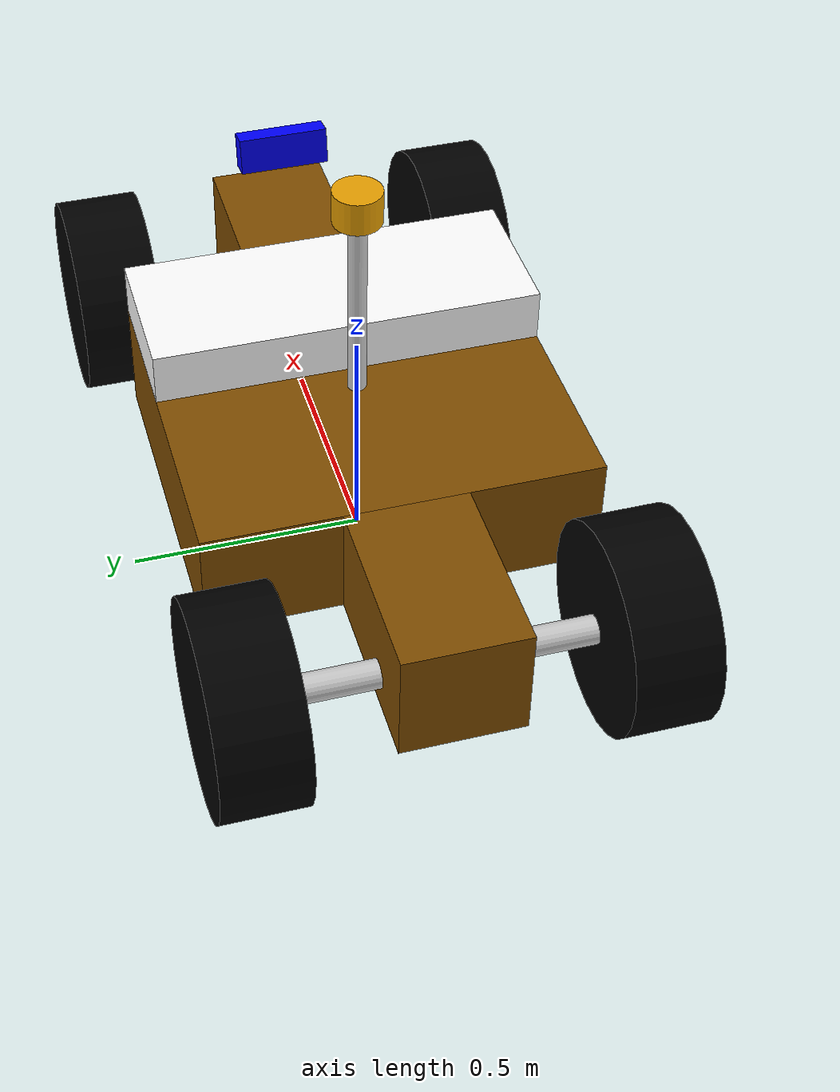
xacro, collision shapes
<?xml version="1.0"?>
<robot name="carlike_robot" xmlns:xacro="http://wiki.ros.org/xacro">
    <!-- 机器人底盘 -->
    <xacro:include filename="$(find carlike_robot_description)/xacro/car_base.xacro" />

    <!-- rgbd相机传感器 -->
    <xacro:include filename="$(find carlike_robot_description)/xacro/sensors/camera.xacro" />

    <!-- 单线和多线雷达选择 -->
    <xacro:include filename="$(find carlike_robot_description)/xacro/sensors/VLP-16.xacro" />

    <gazebo reference="base_footprint">
      <visual>
        <plugin filename="libdraw_traj.so" name="drawtrajPlugin">
          <topicName>/odom</topicName>
        </plugin>
      </visual>
    </gazebo>
</robot>

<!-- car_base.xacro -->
<!-- 根标签，必须声明 xmlns:xacro -->
<robot name="car_base" xmlns:xacro="http://www.ros.org/wiki/xacro">
    <!-- 封装变量、常量 -->
    <xacro:property name="PI" value="3.1415926"/>
    <!-- 宏:黑色设置 -->
    <material name="black">
      <color rgba="0.0 0.0 0.0 1.0" />
    </material>
    <!-- 底盘属性 -->
    <xacro:property name="base_footprint_radius" value="0.001" /> <!-- base_footprint 半径  -->
    <xacro:property name="earth_space" value="0.145" /> <!-- 离地间距 -->
    <xacro:property name="base_link_height" value="0.25" /> <!-- 底盘高度 -->
    <xacro:property name="base_link_m" value="50" />
    <xacro:property name="base_link_back_m" value="20" />
    <xacro:property name="base_link_front_m" value="20" />

    <!-- Macro for inertia matrix -->
    <xacro:macro name="sphere_inertial_matrix" params="m r">
        <inertial>
            <mass value="${m}" />
            <inertia ixx="${2*m*r*r/5}" ixy="0" ixz="0"
                iyy="${2*m*r*r/5}" iyz="0"
                izz="${2*m*r*r/5}" />
        </inertial>
    </xacro:macro>

    <xacro:macro name="cylinder_inertial_matrix" params="m r h">
        <inertial>
            <mass value="${m}" />
            <inertia ixx="${m*(3*r*r+h*h)/12}" ixy ="0" ixz ="0"
                iyy="${m*r*r/2}" iyz ="0"
                izz="${m*(3*r*r+h*h)/12}" />
        </inertial>
    </xacro:macro>

    <xacro:macro name="Box_inertial_matrix" params="m l w h">
       <inertial>
               <mass value="${m}" />
               <inertia ixx="${m*(h*h + l*l)/12}" ixy ="0" ixz ="0"
                   iyy="${m*(w*w + h*h)/12}" iyz="0"
                   izz="${m*(w*w + l*l)/12}" />
       </inertial>
   </xacro:macro>

    <!-- 底盘 -->
    <link name="base_footprint">
      <visual>
        <geometry>
          <sphere radius="${base_footprint_radius}" />
        </geometry>
      </visual>
    </link>

    <link name="base_link">
      <visual>
        <geometry>
          <box size="0.75 0.835 0.25" />
        </geometry>
        <origin xyz="0 0 0" rpy="0 0 0" />
        <material name="yellow">
          <color rgba="0.5 0.3 0.0 1.0" />
        </material>
      </visual>
      <collision>
        <geometry>
          <box size="0.75 0.835 0.25" />
        </geometry>
        <origin xyz="0 0 0" rpy="0 0 0" />
      </collision>
      <xacro:Box_inertial_matrix m="${base_link_m}" l="0.75" w="0.835" h="0.25"/>
    </link>

    <link name="base_link_back">
      <visual>
        <geometry>
          <box size="0.4 0.26 0.25" />
        </geometry>
        <origin xyz="0 0 0" rpy="0 0 0" />
        <material name="yellow">
          <color rgba="0.5 0.3 0.0 1.0" />
        </material>
      </visual>
      <collision>
        <geometry>
          <box size="0.4 0.26 0.25" />
        </geometry>
        <origin xyz="0 0 0" rpy="0 0 0" />
      </collision>
      <xacro:Box_inertial_matrix m="${base_link_back_m}" l="0.4" w="0.26" h="0.25"/>
    </link>

    <link name="base_link_front">
      <visual>
        <geometry>
          <box size="0.45 0.26 0.25" />
        </geometry>
        <origin xyz="0 0 0" rpy="0 0 0" />
        <material name="yellow">
          <color rgba="0.5 0.3 0.0 1.0" />
        </material>
      </visual>
      <collision>
        <geometry>
          <box size="0.45 0.26 0.25" />
        </geometry>
        <origin xyz="0 0 0" rpy="0 0 0" />
      </collision>
      <xacro:Box_inertial_matrix m="${base_link_front_m}" l="0.45" w="0.26" h="0.25"/>
    </link>

    <joint name="base_link2base_footprint" type="fixed">
      <parent link="base_footprint" />
      <child link="base_link" />
      <origin xyz="0 0 ${earth_space + base_link_height / 2 }" />
    </joint>

    <joint name="base_link2base_link_back" type="fixed">
      <parent link="base_link" />
      <child link="base_link_back" />
      <origin xyz="-0.575 0 0" />
    </joint>

    <joint name="base_link2base_link_front" type="fixed">
      <parent link="base_link" />
      <child link="base_link_front" />
      <origin xyz="0.6 0 0" />
    </joint>

    <gazebo reference="base_link">
      <material>Gazebo/Yellow</material>
    </gazebo>
    <gazebo reference="base_link_back">
      <material>Gazebo/Yellow</material>
    </gazebo>
    <gazebo reference="base_link_front">
      <material>Gazebo/Yellow</material>
    </gazebo>

    <!-- 驱动轮（后轮） -->
    <!-- 轮子属性 -->
    <xacro:property name="wheel_radius" value="0.22" /><!-- 半径 -->
    <xacro:property name="wheel_length" value="0.18" /><!-- 宽度 -->
    <xacro:property name="wheel_m" value="1" /> <!-- 质量  -->
    <!-- 驱动轮宏实现 -->
    <link name="backshaft">
      <visual>
        <geometry>
          <cylinder radius="0.03" length="0.8" />
        </geometry>
        <origin xyz="0 0 0" rpy="${PI/2} 0 0" />
        <material name="grey">
          <color rgba="0.8 0.8 0.8 1" />
        </material>
      </visual>
      <collision>
        <geometry>
        <cylinder radius="0.03" length="0.8" />
        </geometry>
        <origin xyz="0 0 0" rpy="${PI/2} 0 0" />
      </collision>
      <xacro:cylinder_inertial_matrix m="0.001" r="0.03" h="0.8" />
    </link>

    <gazebo reference="backshaft">
      <material>Gazebo/Grey</material>
        <mu1>100</mu1>
        <mu2>100</mu2>
    </gazebo>

    <xacro:macro name="add_backwheels" params="name flag">
      <link name="${name}_backwheel">
        <visual>
          <geometry>
            <cylinder radius="${wheel_radius}" length="${wheel_length}" />
          </geometry>
          <origin xyz="0.0 0.0 0.0" rpy="${PI / 2} 0.0 0.0" />
          <material name="black" />
        </visual>
        <collision>
          <geometry>
            <cylinder radius="${wheel_radius}" length="${wheel_length}" />
          </geometry>
          <origin xyz="0.0 0.0 0.0" rpy="${PI / 2} 0.0 0.0" />
        </collision>
        <xacro:cylinder_inertial_matrix m="${wheel_m}" r="${wheel_radius}" h="${wheel_length}" />
      </link>

      <joint name="${name}_backwheel2base_link" type="continuous">
        <parent link="backshaft" />
        <child link="${name}_backwheel" />
        <origin xyz="0 ${flag * 0.4} 0.0" />
        <axis xyz="0 1 0" />
      </joint>

      <gazebo reference="${name}_backwheel">
        <material>Gazebo/Black</material>
        <mu1>10000</mu1>
        <mu2>10000</mu2>
      </gazebo>

    </xacro:macro>

    <joint name="backshaft2base_link" type="fixed">
        <parent link="base_link" />
        <child link="backshaft" />
        <origin xyz="-0.635 0.0 ${-(earth_space + base_link_height / 2 - wheel_radius) }" />
        <axis xyz="0 0 0" />
    </joint>

    <xacro:add_backwheels name="left" flag="1" />
    <xacro:add_backwheels name="right" flag="-1" />

    <!-- 转向轮（前轮） -->
    <xacro:property name="degrees_28" value="0.49"/>
    <xacro:property name="servo_stall_torque" value="1000000.0"/>
    <xacro:property name="servo_no_load_speed" value="10000.0"/>
    <!-- 转向轮实现 -->
    <link name="frontshaft">
      <visual>
        <geometry>
          <cylinder radius="0.03" length="0.8" />
        </geometry>
        <origin xyz="0 0 0" rpy="${PI/2} 0 0" />
        <material name="grey">
          <color rgba="0.8 0.8 0.8 1" />
        </material>
      </visual>
      <collision>
        <geometry>
        <cylinder radius="0.03" length="0.8" />
        </geometry>
        <origin xyz="0 0 0" rpy="${PI/2} 0 0" />
      </collision>
      <xacro:cylinder_inertial_matrix m="0.001" r="0.03" h="0.8" />
    </link>

    <gazebo reference="frontshaft">
      <material>Gazebo/Grey</material>
      <mu1>100</mu1>
      <mu2>100</mu2>
    </gazebo>

  	<link name="left_bridge">
      <visual>
        <geometry>
          <cylinder radius="0.04" length="0.1" />
        </geometry>
        <origin xyz="0 0 0" rpy="${PI/2} 0 0" />
        <material name="red">
          <color rgba="1.0 0.0 0.0 1" />
        </material>
      </visual>
      <collision>
        <geometry>
        <cylinder radius="0.04" length="0.1" />
        </geometry>
        <origin xyz="0 0 0" rpy="${PI/2} 0 0" />
      </collision>
      <xacro:cylinder_inertial_matrix m="0.001" r="0.04" h="0.1" />
    </link>

    <gazebo reference="left_bridge">
      <material>Gazebo/Grey</material>
      <mu1>100</mu1>
      <mu2>100</mu2>
    </gazebo>

  	<link name="right_bridge">
      <visual>
        <geometry>
          <cylinder radius="0.04" length="0.1" />
        </geometry>
        <origin xyz="0 0 0" rpy="${PI/2} 0 0" />
        <material name="red">
          <color rgba="1.0 0.0 0.0 1" />
        </material>
      </visual>
      <collision>
        <geometry>
        <cylinder radius="0.04" length="0.1" />
        </geometry>
        <origin xyz="0 0 0" rpy="${PI/2} 0 0" />
      </collision>
      <xacro:cylinder_inertial_matrix m="0.001" r="0.04" h="0.1" />
    </link>

    <gazebo reference="right_bridge">
      <material>Gazebo/Grey</material>
      <mu1>100</mu1>
      <mu2>100</mu2>
    </gazebo>

    <xacro:macro name="add_frontwheels" params="name flag">
      <link name="${name}_frontwheel">
        <visual>
          <geometry>
            <cylinder radius="${wheel_radius}" length="${wheel_length}" />
          </geometry>
          <origin xyz="0.0 0.0 0.0" rpy="${PI / 2} 0.0 0.0" />
          <material name="black" />
        </visual>
        <collision>
          <geometry>
            <cylinder radius="${wheel_radius}" length="${wheel_length}" />
          </geometry>
          <origin xyz="0.0 0.0 0.0" rpy="${PI / 2} 0.0 0.0" />
        </collision>
        <xacro:cylinder_inertial_matrix m="${wheel_m}" r="${wheel_radius}" h="${wheel_length}" />
      </link>

      <gazebo reference="${name}_frontwheel">
        <material>Gazebo/Black</material>
        <mu1>0.1</mu1>
        <mu2>0.1</mu2>
      </gazebo>

      <joint name="${name}_bridge2base_link" type="revolute">
        <parent link="frontshaft" />
        <child link="${name}_bridge" />
        <origin xyz="0 ${flag * 0.4175} 0.0" />
        <axis xyz="0 0 1" />
        <limit lower="${-degrees_28}" upper="${degrees_28}"
             effort="${servo_stall_torque}" velocity="${servo_no_load_speed}"/>
      </joint>

      <joint name="${name}_frontwheel2${name}_bridge" type="continuous">
        <parent link="${name}_bridge" />
        <child link="${name}_frontwheel" />
        <origin xyz="0.0 0.0 0.0" />
        <axis xyz="0 1 0" />
      </joint>
    </xacro:macro>

    <joint name="frontshaft2base_link" type="fixed">
        <parent link="base_link" />
        <child link="frontshaft" />
        <origin xyz="0.685 0.0 ${-(earth_space + base_link_height / 2 - wheel_radius) }" />
        <axis xyz="0 0 0" />
    </joint>

    <xacro:add_frontwheels name="left" flag="1" />
    <xacro:add_frontwheels name="right" flag="-1" />

    <!-- IMU支撑架实现 -->
    <xacro:property name="frame0_m" value="0.01" />
    <link name="frame0">
      <visual>
        <geometry>
          <box size="0.32 0.835 0.115" />
        </geometry>
        <origin xyz="0 0 0" rpy="0 0 0" />
        <material name="white">
          <color rgba="1.0 1.0 1.0 1.0" />
        </material>
      </visual>
      <collision>
        <geometry>
          <box size="0.32 0.835 0.115" />
        </geometry>
        <origin xyz="0 0 0" rpy="0 0 0" />
      </collision>
      <xacro:Box_inertial_matrix m="${frame0_m}" l="0.32" w="0.835" h="0.115"/>
    </link>

    <joint name="frame02base_link" type="fixed">
      <parent link="base_link" />
      <child link="frame0" />
      <origin xyz="0.215 0 0.1825" />
    </joint>

    <gazebo reference="frame0">
      <material>Gazebo/White</material>
    </gazebo>

    <!-- 激光雷达支架 -->
    <link name="frame1">
      <visual>
        <geometry>
          <cylinder radius="0.02" length="0.445" />
        </geometry>
        <origin xyz="0 0 0" rpy="0 0 0" />
        <material name="grey">
          <color rgba="0.8 0.8 0.8 1" />
        </material>
      </visual>
      <collision>
        <geometry>
          <cylinder radius="0.02" length="0.445" />
        </geometry>
        <origin xyz="0 0 0" rpy="0 0 0" />
      </collision>
      <xacro:cylinder_inertial_matrix m="0.01" r="0.02" h="0.445" />
    </link>

    <joint name="frame12base_link" type="fixed">
      <parent link="base_link" />
      <child link="frame1" />
      <origin xyz="0.0 0.0 0.3475" />
    </joint>

    <gazebo reference="frame1">
      <material>Gazebo/Yellow</material>
    </gazebo>

    <!-- 摄像头 -->
    <link name="camera">
      <visual>
        <geometry>
          <box size="0.05 0.2 0.08" />
        </geometry>
        <origin xyz="0 0 0" rpy="0 0 0" />
        <material name="blue">
          <color rgba="0.0 0.0 1.0 1.0" />
        </material>
      </visual>
      <collision>
        <geometry>
          <box size="0.05 0.2 0.08" />
        </geometry>
        <origin xyz="0 0 0" rpy="0 0 0" />
      </collision>
      <xacro:Box_inertial_matrix m="0.2" l="0.05" w="0.2" h="0.08"/>
    </link>

    <gazebo reference="camera">
      <material>Gazebo/Blue</material>
    </gazebo>

    <joint name="camera_joint" type="fixed">
      <origin xyz="0.435 0 0.1175" rpy="0 0.18 0" />
      <parent link="frame0"/>
      <child link="camera"/>
    </joint>

  <!-- ros2_control 配置：为需要控制的 joint 指定接口 -->
  <ros2_control name="carlike_robot_control" type="system">
    <hardware>
      <plugin>gazebo_ros2_control/GazeboSystem</plugin>
    </hardware>

    <!-- 驱动轮（速度控制） -->
    <joint name="left_backwheel2base_link">
      <command_interface name="velocity">
        <param name="min">-10</param>
        <param name="max">10</param>
      </command_interface>
      <state_interface name="position" />
      <state_interface name="velocity" />
    </joint>

    <joint name="right_backwheel2base_link">
      <command_interface name="velocity">
        <param name="min">-10</param>
        <param name="max">10</param>
      </command_interface>
      <state_interface name="position" />
      <state_interface name="velocity" />
    </joint>

    <!-- 前轮转向（位置控制） -->
    <joint name="left_bridge2base_link">
      <command_interface name="position" />
      <state_interface name="position" />
    </joint>

    <joint name="right_bridge2base_link">
      <command_interface name="position" />
      <state_interface name="position" />
    </joint>
  </ros2_control>

  <gazebo>
    <plugin name="gazebo_ros2_control" filename="libgazebo_ros2_control.so">
      <parameters>$(find carlike_robot_description)/config/controllers.yaml</parameters>
        <ros>
          <remapping>/ackermann_steering_controller/controller_state:=/controller_state</remapping>
          <remapping>/ackermann_steering_controller/odometry:=/odom</remapping>
          <remapping>/ackermann_steering_controller/reference_unstamped:=/cmd_vel</remapping>
          <remapping>/ackermann_steering_controller/tf_odometry:=/tf</remapping>
          <remapping>/ackermann_steering_controller/transition_event:=/transition_event</remapping>
        </ros>
    </plugin>
  </gazebo>
</robot>

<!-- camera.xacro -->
<robot xmlns:xacro="http://www.ros.org/wiki/xacro" name="rgbd_camera">

  <!-- 被引用的link -->
    <gazebo reference="camera">
      <sensor type="depth" name="camera_sensor">
          <plugin name="depth_camera" filename="libgazebo_ros_camera.so">
              <frame_name>camera_link_optical</frame_name>
          </plugin>
          <always_on>true</always_on>
          <update_rate>10</update_rate>
          <camera name="camera">
              <horizontal_fov>1.5009831567</horizontal_fov>
              <image>
                  <width>800</width>
                  <height>600</height>
                  <format>R8G8B8</format>
              </image>

              <distortion>
                  <k1>0.0</k1>
                  <k2>0.0</k2>
                  <k3>0.0</k3>
                  <p1>0.0</p1>
                  <p2>0.0</p2>
                  <center>0.5 0.5</center>
              </distortion>
          </camera>
      </sensor>
    </gazebo>

  <!-- generate an optical frame http://www.ros.org/reps/rep-0103.html#suffix-frames
      so that ros and opencv can operate on the camera frame correctly -->
  <joint name="camera_optical_joint" type="fixed">
    <!-- these values have to be these values otherwise the gazebo camera image
        won't be aligned properly with the frame it is supposedly originating from -->
    <origin xyz="0 0 0" rpy="-1.5708 0 -1.5708"/>
    <parent link="camera"/>
    <child link="camera_link_optical"/>
  </joint>

  <link name="camera_link_optical">
  </link>

</robot>

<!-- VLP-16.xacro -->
<robot name="VLP-16" xmlns:xacro="http://www.ros.org/wiki/xacro">

  <xacro:arg name="gpu" default="false"/>
  <xacro:property name="gpu" value="$(arg gpu)" />
  <xacro:arg name="organize_cloud" default="false"/>
  <xacro:property name="organize_cloud" value="$(arg organize_cloud)" />

  <xacro:include filename="$(find velodyne_description)/urdf/VLP-16.urdf.xacro"/>
  <xacro:VLP-16 parent="frame1" name="velodyne" topic="/velodyne_points" organize_cloud="${organize_cloud}" hz="10" samples="440" gpu="${gpu}">
    <origin xyz="0 0 0.2" rpy="0 0 0" />
  </xacro:VLP-16>

</robot>

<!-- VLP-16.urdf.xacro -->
<robot xmlns:xacro="http://www.ros.org/wiki/xacro" name="VLP-16">
  <xacro:property name="M_PI" value="3.1415926535897931" />
  <xacro:macro name="VLP-16" params="*origin is_sim:=true parent:=base_link name:=velodyne tf_prefix:='' topic:=/velodyne_points organize_cloud:=false hz:=10 lasers:=16 samples:=1875 collision_range:=0.3 min_range:=0.0 max_range:=100.0 noise:=0.008 min_angle:=-${M_PI} max_angle:=${M_PI} gpu:=false">

    <joint name="${name}_base_mount_joint" type="fixed">
      <xacro:insert_block name="origin" />
      <parent link="${parent}"/>
      <child link="${name}_base_link"/>
    </joint>

    <link name="${name}_base_link">
      <inertial>
        <mass value="0.83"/>
        <origin xyz="0 0 0.03585"/>
        <inertia ixx="${(0.83 * (3.0*0.0516*0.0516 + 0.0717*0.0717)) / 12.0}" ixy="0" ixz="0"
          iyy="${(0.83 * (3.0*0.0516*0.0516 + 0.0717*0.0717)) / 12.0}" iyz="0"
          izz="${0.5 * 0.83 * (0.0516*0.0516)}"/>
      </inertial>
      <visual>
        <geometry>
          <mesh filename="package://velodyne_description/meshes/VLP16_base_1.dae" />
        </geometry>
      </visual>
      <visual>
        <geometry>
          <mesh filename="package://velodyne_description/meshes/VLP16_base_2.dae" />
        </geometry>
      </visual>
      <collision>
        <origin rpy="0 0 0" xyz="0 0 0.03585"/>
        <geometry>
          <cylinder radius="0.0516" length="0.0717"/>
        </geometry>
      </collision>
    </link>

    <joint name="${name}_base_scan_joint" type="fixed" >
      <origin xyz="0 0 0.0377" rpy="0 0 0" />
      <parent link="${name}_base_link" />
      <child link="${name}"/>
    </joint>

    <link name="${name}">
      <inertial>
        <mass value="0.01"/>
        <origin xyz="0 0 0"/>
        <inertia ixx="1e-7" ixy="0" ixz="0" iyy="1e-7" iyz="0" izz="1e-7"/>
      </inertial>
      <visual>
        <origin xyz="0 0 -0.0377" />
        <geometry>
          <mesh filename="package://velodyne_description/meshes/VLP16_scan.dae" />
        </geometry>
      </visual>
      <collision>
        <geometry>
          <sphere radius="0"/>
        </geometry>
      </collision>
    </link>

    <!-- Gazebo requires the velodyne_gazebo_plugins package -->
    <xacro:if value="${is_sim}">
        <gazebo reference="${name}">
            <xacro:if value="${gpu}">
                <sensor type="gpu_ray" name="${name}-VLP16">
                <pose>0 0 0 0 0 0</pose>
                <visualize>false</visualize>
                <update_rate>${hz}</update_rate>
                <ray>
                    <scan>
                    <horizontal>
                        <samples>${samples}</samples>
                        <resolution>1</resolution>
                        <min_angle>${min_angle}</min_angle>
                        <max_angle>${max_angle}</max_angle>
                    </horizontal>
                    <vertical>
                        <samples>${lasers}</samples>
                        <resolution>1</resolution>
                        <min_angle>-${15.0*M_PI/180.0}</min_angle>
                        <max_angle> ${15.0*M_PI/180.0}</max_angle>
                    </vertical>
                    </scan>
                    <range>
                    <min>${collision_range}</min>
                    <max>${max_range+1}</max>
                    <resolution>0.001</resolution>
                    </range>
                    <noise>
                    <type>gaussian</type>
                    <mean>0.0</mean>
                    <stddev>0.0</stddev>
                    </noise>
                </ray>
                <plugin name="gazebo_ros_laser_controller" filename="libgazebo_ros_velodyne_laser.so">
                    <ros>
                    <namespace>/${name}</namespace>
                    <remapping>~/out:=${topic}</remapping>
                    </ros>
                    <tf_prefix>${tf_prefix}</tf_prefix>
                    <frame_name>${name}</frame_name>
                    <organize_cloud>${organize_cloud}</organize_cloud>
                    <min_range>${min_range}</min_range>
                    <max_range>${max_range}</max_range>
                    <gaussian_noise>${noise}</gaussian_noise>
                </plugin>
                </sensor>
            </xacro:if>
            <xacro:unless value="${gpu}">
                <sensor type="ray" name="${name}-VLP16">
                <pose>0 0 0 0 0 0</pose>
                <visualize>false</visualize>
                <update_rate>${hz}</update_rate>
                <ray>
                    <scan>
                    <horizontal>
                        <samples>${samples}</samples>
                        <resolution>1</resolution>
                        <min_angle>${min_angle}</min_angle>
                        <max_angle>${max_angle}</max_angle>
                    </horizontal>
                    <vertical>
                        <samples>${lasers}</samples>
                        <resolution>1</resolution>
                        <min_angle>-${15.0*M_PI/180.0}</min_angle>
                        <max_angle> ${15.0*M_PI/180.0}</max_angle>
                    </vertical>
                    </scan>
                    <range>
                    <min>${collision_range}</min>
                    <max>${max_range+1}</max>
                    <resolution>0.001</resolution>
                    </range>
                    <noise>
                    <type>gaussian</type>
                    <mean>0.0</mean>
                    <stddev>0.0</stddev>
                    </noise>
                </ray>
                <plugin name="gazebo_ros_laser_controller" filename="libgazebo_ros_velodyne_laser.so">
                    <ros>
                    <namespace>/${name}</namespace>
                    <remapping>~/out:=${topic}</remapping>
                    </ros>
                    <tf_prefix>${tf_prefix}</tf_prefix>
                    <frame_name>${name}</frame_name>
                    <organize_cloud>${organize_cloud}</organize_cloud>
                    <min_range>${min_range}</min_range>
                    <max_range>${max_range}</max_range>
                    <gaussian_noise>${noise}</gaussian_noise>
                </plugin>
                </sensor>
            </xacro:unless>
        </gazebo>
    </xacro:if>

  </xacro:macro>
</robot>
